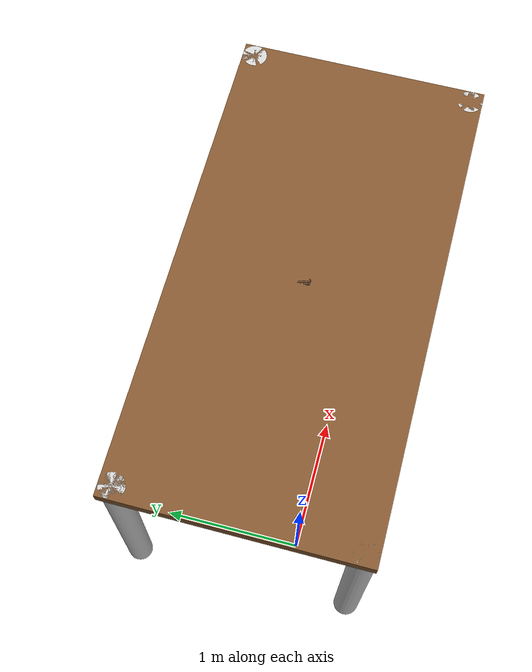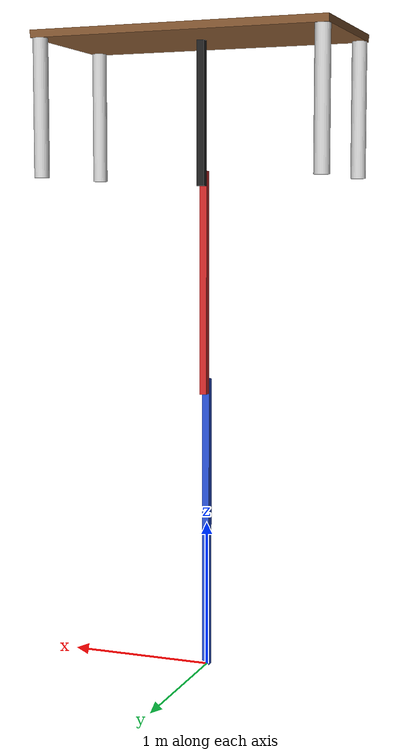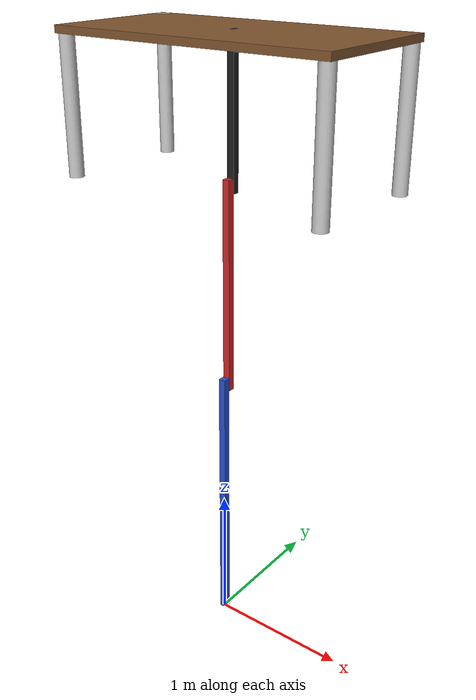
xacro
<?xml version="1.0" encoding="UTF-8"?>
<robot xmlns:xacro="http://www.ros.org/wiki/xacro" name="table_on_rrbot">

  <xacro:include filename="materials.xacro"/>
  <xacro:include filename="rrbot_macro.xacro"/>
  <xacro:include filename="table_macro.xacro"/>

  <!-- world frame -->
  <link name="world"/>

  <!-- Create Robot -->
  <xacro:rrbot prefix="rrbot_" parent="world">
    <origin xyz="0 0 0" rpy="0 0 0"/>
  </xacro:rrbot>

  <!-- Mount table to END EFFECTOR -->
  <xacro:table prefix="table_" parent="rrbot_tool0">
    <origin xyz="0 0 0" rpy="0 0 0"/>
  </xacro:table>

</robot>

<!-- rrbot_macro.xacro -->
<robot xmlns:xacro="http://www.ros.org/wiki/xacro">

  <xacro:macro name="rrbot" params="prefix parent *origin">

    <!-- Constants for robot dimensions -->
    <xacro:property name="width" value="0.05" /> <!-- Square dimensions (widthxwidth) of beams -->
    <xacro:property name="height0" value="2" /> <!-- base_link -->
    <xacro:property name="height1" value="1.5" /> <!-- link1 -->
    <xacro:property name="height2" value="1" /> <!-- link2 -->
    <xacro:property name="axel_offset" value="0.05" /> <!-- Space between top of beam and each joint -->

    <joint name="${prefix}base_joint" type="fixed">
      <xacro:insert_block name="origin" />
      <parent link="${parent}" />
      <child link="${prefix}base_link" />
    </joint>

    <!-- Base Link -->
    <link name="${prefix}base_link">
      <visual>
        <origin xyz="0 0 ${height0/2}" rpy="0 0 0" />
        <geometry>
          <box size="${width} ${width} ${height0}" />
        </geometry>
        <material name="blue" />
      </visual>
    </link>

    <joint name="${prefix}joint1" type="continuous">
      <parent link="${prefix}base_link" />
      <child link="${prefix}link1" />
      <origin xyz="0 ${width} ${height0 - axel_offset}" rpy="0 0 0" />
      <axis xyz="0 1 0" />
    </joint>

    <!-- Middle Link -->
    <link name="${prefix}link1">
      <visual>
        <origin xyz="0 0 ${height1/2 - axel_offset}" rpy="0 0 0" />
        <geometry>
          <box size="${width} ${width} ${height1}" />
        </geometry>
        <material name="red" />
      </visual>
    </link>

    <joint name="${prefix}joint2" type="continuous">
      <parent link="${prefix}link1" />
      <child link="${prefix}link2" />
      <origin xyz="0 ${width} ${height1 - axel_offset*2}" rpy="0 0 0" />
      <axis xyz="0 1 0" />
    </joint>

    <!-- Top Link -->
    <link name="${prefix}link2">
      <visual>
        <origin xyz="0 0 ${height2/2 - axel_offset}" rpy="0 0 0" />
        <geometry>
          <box size="${width} ${width} ${height2}" />
        </geometry>
        <material name="black" />
      </visual>
    </link>

    <joint name="${prefix}tool_joint" type="fixed">
      <origin xyz="0 0 ${height2-axel_offset}" rpy="0 0 0" />
      <parent link="${prefix}link2" />
      <child link="${prefix}tool0" />
    </joint>

    <!-- Tool Link -->
    <link name="${prefix}tool0"/>

  </xacro:macro>

</robot>

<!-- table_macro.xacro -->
<robot xmlns:xacro="http://www.ros.org/wiki/xacro">

  <xacro:macro name="table" params="prefix parent *origin">

    <!-- TABLE PROPERTIES -->
    <xacro:property name="table_length" value="2" />
    <xacro:property name="table_width" value="1" />
    <xacro:property name="table_height" value="1" />
    <xacro:property name="table_thickness" value="0.05" />
    <xacro:property name="leg_length" value="${table_height - table_thickness}" />
    <xacro:property name="leg_radius" value="0.05" />

    <!-- Base Joint (places table top frame in world) -->
    <joint name="${prefix}base_joint" type="fixed">
      <xacro:insert_block name="origin"/>
      <parent link="${parent}" />
      <child link="${prefix}top" />
    </joint>

    <!-- Table Top -->
    <link name="${prefix}top">
      <visual>
        <!-- top frame is at surface, so geometry goes downward -->
        <origin xyz="0 0 ${-table_thickness/2}" rpy="0 0 0"/>
        <geometry>
          <box size="${table_length} ${table_width} ${table_thickness}" />
        </geometry>
        <material name="brown"/>
      </visual>
    </link>

    <!-- LEG POSITIONS -->
    <xacro:property name="x_pos" value="${table_length/2 - leg_radius}" />
    <xacro:property name="y_pos" value="${table_width/2 - leg_radius}" />

    <!-- ================= LEGS ================= -->

    <!-- Leg 1 -->
    <joint name="${prefix}leg1_joint" type="fixed">
      <parent link="${prefix}top"/>
      <child link="${prefix}leg1"/>
      <origin xyz="${x_pos} ${y_pos} 0" rpy="0 0 0"/>
    </joint>

    <link name="${prefix}leg1">
      <visual>
        <origin xyz="0 0 ${-leg_length/2}" rpy="0 0 0"/>
        <geometry>
          <cylinder radius="${leg_radius}" length="${leg_length}" />
        </geometry>
        <material name="light_grey"/>
      </visual>
    </link>

    <!-- Leg 2 -->
    <joint name="${prefix}leg2_joint" type="fixed">
      <parent link="${prefix}top"/>
      <child link="${prefix}leg2"/>
      <origin xyz="${x_pos} ${-y_pos} 0" rpy="0 0 0"/>
    </joint>

    <link name="${prefix}leg2">
      <visual>
        <origin xyz="0 0 ${-leg_length/2}" rpy="0 0 0"/>
        <geometry>
          <cylinder radius="${leg_radius}" length="${leg_length}" />
        </geometry>
        <material name="light_grey"/>
      </visual>
    </link>

    <!-- Leg 3 -->
    <joint name="${prefix}leg3_joint" type="fixed">
      <parent link="${prefix}top"/>
      <child link="${prefix}leg3"/>
      <origin xyz="${-x_pos} ${y_pos} 0" rpy="0 0 0"/>
    </joint>

    <link name="${prefix}leg3">
      <visual>
        <origin xyz="0 0 ${-leg_length/2}" rpy="0 0 0"/>
        <geometry>
          <cylinder radius="${leg_radius}" length="${leg_length}" />
        </geometry>
        <material name="light_grey"/>
      </visual>
    </link>

    <!-- Leg 4 -->
    <joint name="${prefix}leg4_joint" type="fixed">
      <parent link="${prefix}top"/>
      <child link="${prefix}leg4"/>
      <origin xyz="${-x_pos} ${-y_pos} 0" rpy="0 0 0"/>
    </joint>

    <link name="${prefix}leg4">
      <visual>
        <origin xyz="0 0 ${-leg_length/2}" rpy="0 0 0"/>
        <geometry>
          <cylinder radius="${leg_radius}" length="${leg_length}" />
        </geometry>
        <material name="light_grey"/>
      </visual>
    </link>

  </xacro:macro>

</robot>
